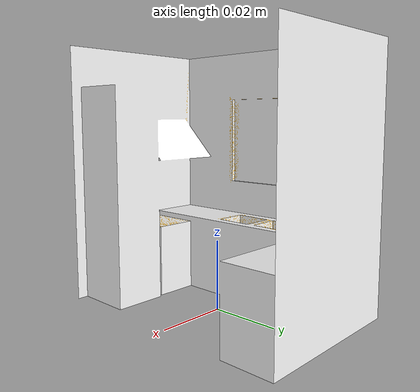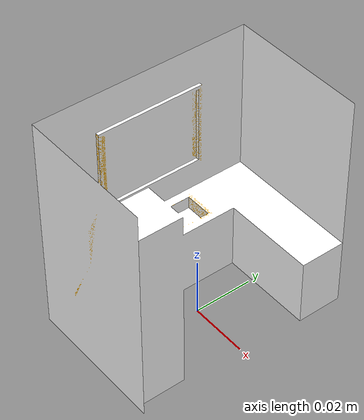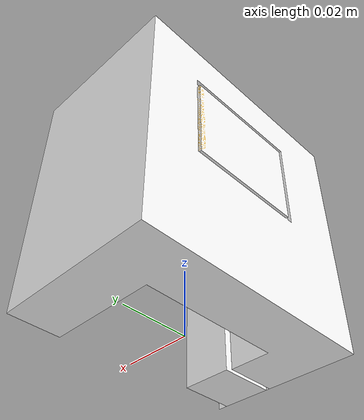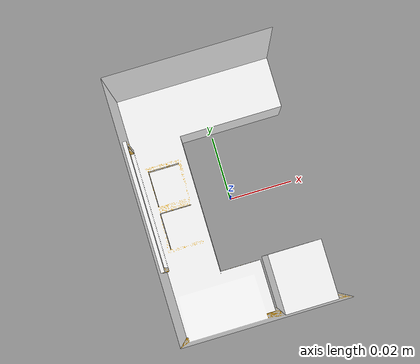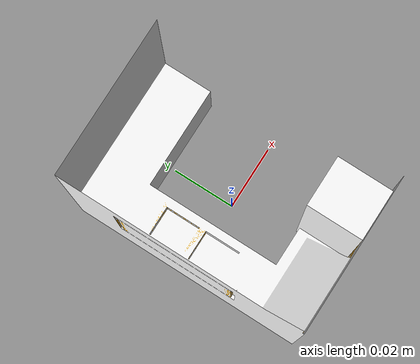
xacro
<?xml version="1.0" ?>
<robot name="uh_robothouse">
  <link name="kitchen">
  <inertial>
    <mass value="500.0" />
    <origin xyz="0 0 0.0" />
    <inertia  ixx="1.0" ixy="0.0"  ixz="0.0"  iyy="1.0"  iyz="0.0"  izz="1.0" />
  </inertial>
  <visual>
   <origin xyz="0 0 0.0" rpy="0 0 0" />
   <geometry>
     <mesh filename="package://cob_gazebo_worlds/Media/models/kitchen.dae" scale=".025 .025 .025"/>
   </geometry>
  </visual>
  <collision>
   <origin xyz="0 0 0.0" rpy="0 0 0" />
   <geometry>
     <!--box size="0.06 0.095 0.2" /-->
     <mesh filename="package://cob_gazebo_worlds/Media/models/kitchen.dae" scale=".025 .025 .025"/>
   </geometry>
  </collision>
  </link>
</robot>
